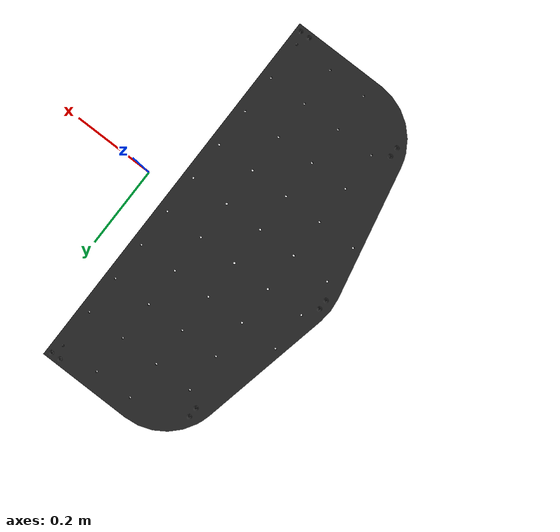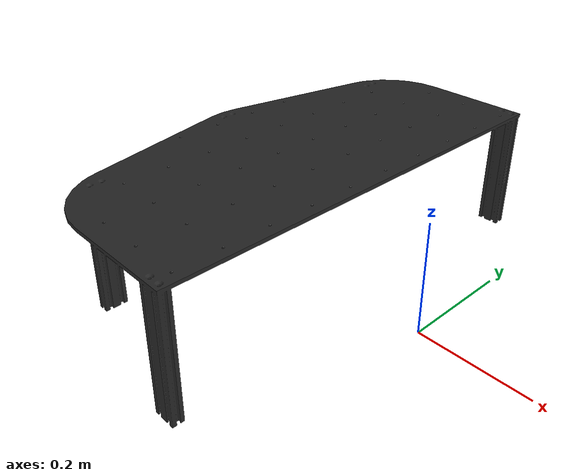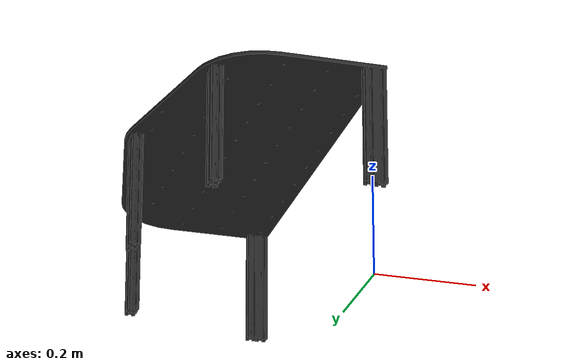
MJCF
<mujoco model="shelf">
  <default>
    <default class="visual">
      <geom group="2" type="mesh" contype="0" conaffinity="0"/>
    </default>
    <default class="collision">
      <geom group="3" type="mesh"/>
    </default>
  </default>
  <asset>
    <material name="mtl_shelf" specular="0.20000000000000004" shininess="1.0" rgba="0.14901961 0.14901961 0.14901961 1.0"/>
    <mesh file="shelf.obj"/>
  </asset>
  <worldbody>
    <body name="shelf">
      <geom material="mtl_shelf" mesh="shelf" class="visual"/>
      <geom mesh="shelf" class="collision"/>
    </body>
  </worldbody>
</mujoco>
